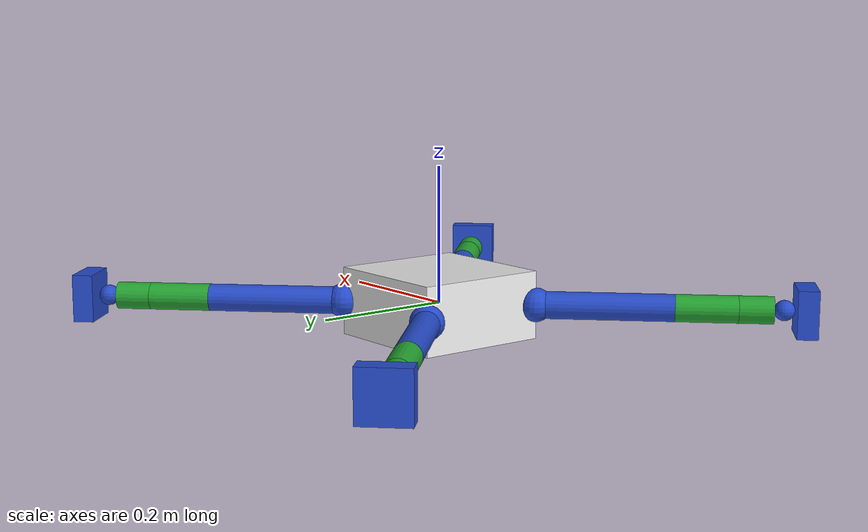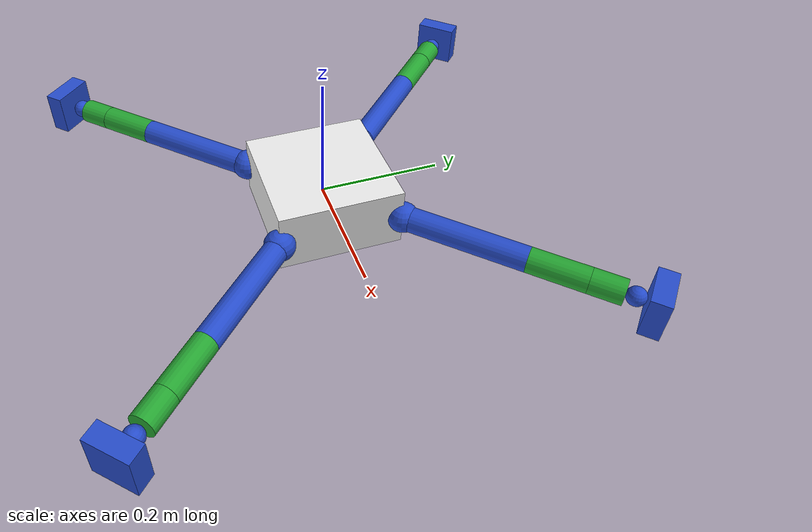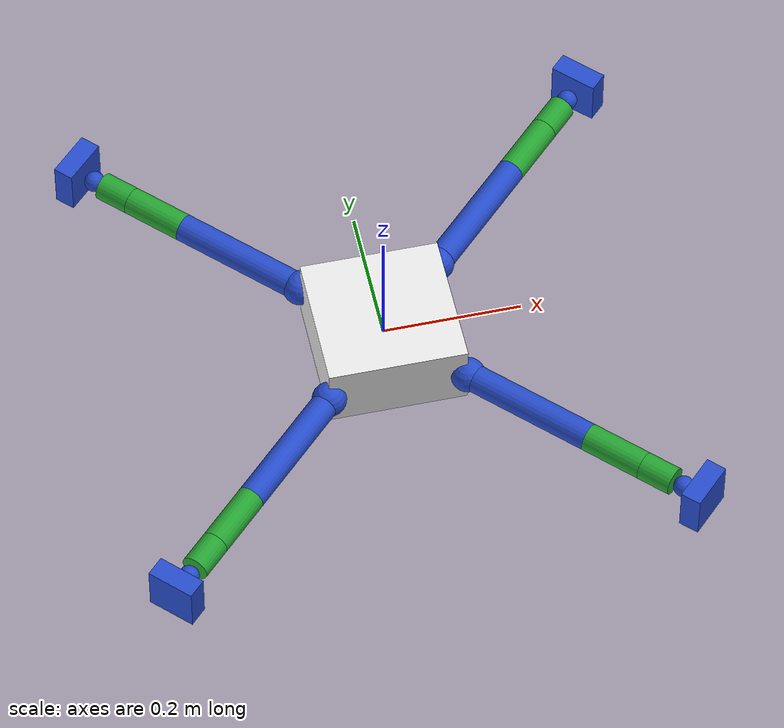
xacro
<?xml version="1.0"?>
<robot xmlns:xacro="http://www.ros.org/wiki/xacro"  name="robot">

    <xacro:arg name="use_gazebo" default="false" />

    <xacro:arg name="use_fake_hardware" default="false" />
    <xacro:arg name="fake_sensor_commands" default="false" />
    <xacro:arg name="prefix" default="" />
    <xacro:arg name="slowdown" default="100.0" />

    <!-- Import core-description -->
    <xacro:include filename="robot_core.xacro" />

    <!-- Import all Gazebo-customization elements, including Gazebo colors -->
    <xacro:include filename="magnorris.gazebo.xacro" />

    <!-- Import Rviz colors -->
    <xacro:include filename="magnorris.materials.xacro" />

    <!-- Import RRBot ros2_control description -->
    <xacro:include filename="robot.ros2_control.xacro" />

    <xacro:magnorris_ros2_control use_gazebo="false"/>

</robot>

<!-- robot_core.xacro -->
<robot xmlns:xacro="http://www.ros.org/wiki/xacro" >

    <xacro:include filename="inertial_macros.xacro"/>

    <!--dimensions-->
    <xacro:property name="length_body" value="0.20" />
    <xacro:property name="width_body" value="0.20" />
    <xacro:property name="height_body" value="0.10" />
    <xacro:property name="length_upper_leg" value="0.20" />
    <xacro:property name="length_lower_leg" value="0.09" />
    <xacro:property name="length_foot_yaw" value="0.05" />
    <xacro:property name="radius_upper_leg" value="0.02" />
    <xacro:property name="radius_lower_leg" value="0.02" />
    <xacro:property name="radius_joint" value="0.025" />
    <xacro:property name="radius_foot_joint" value="0.015" />
    <xacro:property name="foot_thickness" value="0.03" />
    <xacro:property name="foot_length" value="0.07" />
    <xacro:property name="foot_width" value="0.07" />
    <!--mass-->
    <xacro:property name="mass_body" value="0.70" />
    <xacro:property name="mass_upper_leg" value="0.40" />
    <xacro:property name="mass_lower_leg" value="0.4" />
    <xacro:property name="mass_hip_joint" value="0.5" />
    <xacro:property name="mass_foot_yaw" value="0.2" />
    <xacro:property name="mass_foot_roll" value="0.2" />
    <xacro:property name="mass_foot" value="1.0" />
    <!--joint properties-->
    <xacro:property name="joint_effort" value="200.0" />
    <xacro:property name="joint_velocity" value="1.0" />
    <xacro:property name="joint_damping" value="0.8" />
    <xacro:property name="joint_friction" value="0.0" />

    <!-- BASE LINK -->

    <!-- CHASSIS LINK -->

    <link name="chassis">
        <visual>
            <origin xyz="0 0 0"/>
            <geometry>
                <box size="${length_body} ${width_body} ${height_body}"/>
            </geometry>
            <material name="white"/>
        </visual>

        <collision>
            <origin xyz="0 0 0"/>
            <geometry>
                <box size="${length_body*0.95 - 2*radius_joint} ${width_body*0.95 - 2*radius_joint} ${height_body}"/>
            </geometry>
            <surface>
      <contact>
          <ode>
            <kp>1e15</kp>
            <kd>1e13</kd>
          </ode>
        </contact>
    </surface>
        </collision>

        <xacro:inertial_box mass="${mass_body}" x="${length_body}" y="${width_body}" z="${height_body}">
            <origin xyz="0 0 0" rpy="0 0 0"/>
        </xacro:inertial_box>
    </link>

    <!-- First Arm -->

    <joint name="first_arm_yaw" type="revolute">
        <parent link="chassis"/>
        <child link="first_arm_link"/>
        <origin xyz="${length_body/2} ${width_body/2} 0" rpy="0 0 ${pi/4}" />
        <axis xyz="0 0 1"/>
        <dynamics damping="${1*joint_damping}" friction="${joint_friction}"/>
        <limit effort="${joint_effort}" velocity="${joint_velocity}" lower="-3.1" upper="3.1"/>
    </joint>

    <link name="first_arm_link">
        <visual>
            <origin xyz="0.0 0.0 0.0" rpy="0 0 0" />
            <geometry>
                <sphere radius="${radius_joint}" />
            </geometry>
            <material name="blue"/>
        </visual>
        <collision>
            <origin xyz="0.0 0.0 0.0" rpy="0 0 0" />
            <geometry>
                <sphere radius="${radius_joint}" />
            </geometry>
        </collision>

        <xacro:inertial_sphere mass="${mass_hip_joint}" radius="${radius_joint}">
            <origin xyz="0.0 0.0 0.0" rpy="0 0 0"/>
        </xacro:inertial_sphere>
    </link>

    <joint name="first_arm_pitch" type="revolute">
        <parent link="first_arm_link"/>
        <child link="first_arm"/>
        <origin xyz="0.0 0.0 0.0" rpy="0 0 0" />
        <axis xyz="0 1 0"/>
        <dynamics damping="${1*joint_damping}" friction="${joint_friction}"/>
        <limit effort="${joint_effort}" velocity="${joint_velocity}" lower="-3.1" upper="3.1"/>
    </joint>

    <link name="first_arm">
        <visual>
            <origin xyz="${length_upper_leg/2} 0 0" rpy="${-pi/2} 0 ${pi/2}" />
            <geometry>
                <cylinder radius="${radius_upper_leg}" length="${length_upper_leg}"/>
            </geometry>
            <material name="blue"/>
        </visual>

        <collision>
            <origin xyz="${length_upper_leg/2} 0 0" rpy="${-pi/2} 0 ${pi/2}" />
            <geometry>
                <cylinder radius="${radius_upper_leg}" length="${length_upper_leg - 2.2*radius_joint}"/>
            </geometry>
        </collision>

        <xacro:inertial_cylinder mass="${mass_upper_leg}" length="${length_upper_leg}" radius="${radius_upper_leg}">
            <origin xyz="${length_upper_leg/2} 0 0" rpy="${-pi/2} 0 ${pi/2}" />
        </xacro:inertial_cylinder>
    </link>

    <joint name="first_knee_joint" type="revolute">
        <parent link="first_arm"/>
        <child link="first_knee"/>
        <origin xyz="${length_upper_leg} 0.0 0.0" rpy="0 0 0" />
        <axis xyz="0 1 0"/>
        <dynamics damping="${1*joint_damping}" friction="${joint_friction}"/>
        <limit effort="${joint_effort}" velocity="${joint_velocity}" lower="-3.1" upper="3.1"/>
    </joint>

    <link name="first_knee">
        <visual>
            <origin xyz="${length_lower_leg/2} 0 0" rpy="${-pi/2} 0 ${pi/2}" />
            <geometry>
                <cylinder radius="${radius_lower_leg}" length="${length_lower_leg}"/>
            </geometry>
            <material name="green"/>
        </visual>

        <collision>
            <origin xyz="${length_lower_leg/2} 0 0" rpy="${-pi/2} 0 ${pi/2}" />
            <geometry>
                <cylinder radius="${radius_lower_leg}" length="${length_lower_leg}"/>
            </geometry>
            <material name="green"/>
        </collision>

        <xacro:inertial_cylinder mass="${mass_lower_leg}" length="${length_lower_leg}" radius="${radius_lower_leg}">
            <origin xyz="${length_lower_leg/2} 0 0" rpy="${-pi/2} 0 ${pi/2}" />
        </xacro:inertial_cylinder>
    </link>

   <joint name="first_ankle_yaw_joint" type="revolute">
        <parent link="first_knee"/>
        <child link="first_ankle_yaw"/>
        <origin xyz="${length_lower_leg} 0.0 0.0" rpy="0 0 0" />
        <axis xyz="1 0 0"/>
        <dynamics damping="${1*joint_damping}" friction="${joint_friction}"/>
        <limit effort="${joint_effort}" velocity="${joint_velocity}" lower="-3.1" upper="3.1"/>
    </joint>

    <link name="first_ankle_yaw">
        <visual>
            <origin xyz="${length_foot_yaw/2} 0 0" rpy="${-pi/2} 0 ${pi/2}" />
            <geometry>
                <cylinder radius="${radius_lower_leg}" length="${length_foot_yaw}"/>
            </geometry>
            <material name="green"/>
        </visual>

        <collision>
            <origin xyz="${0.05/2} 0 0" rpy="${-pi/2} 0 ${pi/2}" />
            <geometry>
                <cylinder radius="${radius_lower_leg}" length="${length_foot_yaw}"/>
            </geometry>
            <material name="green"/>
        </collision>

        <xacro:inertial_cylinder mass="${mass_foot_yaw}" length="${length_foot_yaw}" radius="${radius_lower_leg}">
            <origin xyz="${length_foot_yaw/2} 0 0" rpy="${-pi/2} 0 ${pi/2}" />
        </xacro:inertial_cylinder>
    </link>

    <joint name="first_ankle_roll_joint" type="revolute">
        <parent link="first_ankle_yaw"/>
        <child link="first_ankle_roll"/>
        <origin xyz="${length_foot_yaw + radius_foot_joint} 0 0" rpy="0 0 0" />
        <axis xyz="0 0 1"/>
        <dynamics damping="${1*joint_damping}" friction="${joint_friction}"/>
        <limit effort="${joint_effort}" velocity="${joint_velocity}" lower="-3.1" upper="3.1"/>
    </joint>

    <link name="first_ankle_roll">
        <visual>
            <origin xyz="0.0 0.0 0.0" rpy="0 0 0" />
            <geometry>
                <sphere radius="${radius_foot_joint}" />
            </geometry>
            <material name="blue"/>
        </visual>
        <collision>
            <origin xyz="0.0 0.0 0.0" rpy="0 0 0" />
            <geometry>
                <sphere radius="${0.9 * radius_foot_joint}" />
            </geometry>
        </collision>

        <xacro:inertial_sphere mass="${mass_foot_roll}" radius="${radius_foot_joint}">
            <origin xyz="0.0 0.0 0.0" rpy="0 0 0"/>
        </xacro:inertial_sphere>
    </link>

    <joint name="first_ankle_pitch_joint" type="revolute">
        <parent link="first_ankle_roll"/>
        <child link="first_foot"/>
        <origin xyz="0 0 0" rpy="0 0 0" />
        <axis xyz="0 1 0"/>
        <dynamics damping="${1*joint_damping}" friction="${joint_friction}"/>
        <limit effort="${joint_effort}" velocity="${joint_velocity}" lower="-3.1" upper="3.1"/>
    </joint>

    <link name="first_foot">
        <visual>
            <origin xyz="${radius_foot_joint + 0.5 * foot_thickness} 0.0 0.0" rpy="0 0 0" />
            <geometry>
                <box size="${foot_thickness} ${foot_width} ${foot_length}"/>
            </geometry>
            <material name="blue"/>
        </visual>
        <collision>
            <origin xyz="${radius_foot_joint + 0.5 * foot_thickness} 0.0 0.0" rpy="0 0 0" />
            <geometry>
                <box size="${foot_thickness} ${foot_width} ${foot_length}"/>
            </geometry>
        </collision>

         <xacro:inertial_box mass="${mass_foot}" x="${foot_thickness}" y="${foot_width}" z="${foot_length}">
            <origin xyz="${radius_foot_joint + 0.5 * foot_thickness} 0.0 0.0" rpy="0 0 0" />
        </xacro:inertial_box>
    </link>

    <!-- Second Arm -->

    <joint name="second_arm_yaw" type="revolute">
        <parent link="chassis"/>
        <child link="second_arm_link"/>
        <origin xyz="${length_body/2} ${-width_body/2} 0" rpy="0 0 ${-pi/4}" />
        <axis xyz="0 0 1"/>
        <dynamics damping="${1*joint_damping}" friction="${joint_friction}"/>
        <limit effort="${joint_effort}" velocity="${joint_velocity}" lower="-3.1" upper="3.1"/>
    </joint>

    <link name="second_arm_link">
        <visual>
            <origin xyz="0.0 0.0 0.0" rpy="0 0 0" />
            <geometry>
                <sphere radius="${radius_joint}" />
            </geometry>
            <material name="blue"/>
        </visual>
        <collision>
            <origin xyz="0.0 0.0 0.0" rpy="0 0 0" />
            <geometry>
                <sphere radius="${radius_joint}" />
            </geometry>
        </collision>

        <xacro:inertial_sphere mass="${mass_hip_joint}" radius="${radius_joint}">
            <origin xyz="0.0 0.0 0.0" rpy="0 0 0"/>
        </xacro:inertial_sphere>
    </link>

    <joint name="second_arm_pitch" type="revolute">
        <parent link="second_arm_link"/>
        <child link="second_arm"/>
        <origin xyz="0.0 0.0 0.0" rpy="0 0 0" />
        <axis xyz="0 1 0"/>
        <dynamics damping="${1*joint_damping}" friction="${joint_friction}"/>
        <limit effort="${joint_effort}" velocity="${joint_velocity}" lower="-3.1" upper="3.1"/>
    </joint>

    <link name="second_arm">
        <visual>
            <origin xyz="${length_upper_leg/2} 0 0" rpy="${-pi/2} 0 ${pi/2}" />
            <geometry>
                <cylinder radius="${radius_upper_leg}" length="${length_upper_leg}"/>
            </geometry>
            <material name="blue"/>
        </visual>

        <collision>
            <origin xyz="${length_upper_leg/2} 0 0" rpy="${-pi/2} 0 ${pi/2}" />
            <geometry>
                <cylinder radius="${radius_upper_leg}" length="${length_upper_leg - 2.2*radius_joint}"/>
            </geometry>
        </collision>

        <xacro:inertial_cylinder mass="${mass_upper_leg}" length="${length_upper_leg}" radius="${radius_upper_leg}">
            <origin xyz="${length_upper_leg/2} 0 0" rpy="${-pi/2} 0 ${pi/2}" />
        </xacro:inertial_cylinder>
    </link>

    <joint name="second_knee_joint" type="revolute">
        <parent link="second_arm"/>
        <child link="second_knee"/>
        <origin xyz="${length_upper_leg} 0.0 0.0" rpy="0 0 0" />
        <axis xyz="0 1 0"/>
        <dynamics damping="${1*joint_damping}" friction="${joint_friction}"/>
        <limit effort="${joint_effort}" velocity="${joint_velocity}" lower="-3.1" upper="3.1"/>
    </joint>

    <link name="second_knee">
        <visual>
            <origin xyz="${length_lower_leg/2} 0 0" rpy="${-pi/2} 0 ${pi/2}" />
            <geometry>
                <cylinder radius="${radius_lower_leg}" length="${length_lower_leg}"/>
            </geometry>
            <material name="green"/>
        </visual>

        <collision>
            <origin xyz="${length_lower_leg/2} 0 0" rpy="${-pi/2} 0 ${pi/2}" />
            <geometry>
                <cylinder radius="${radius_lower_leg}" length="${length_lower_leg}"/>
            </geometry>
            <material name="green"/>
        </collision>

        <xacro:inertial_cylinder mass="${mass_lower_leg}" length="${length_lower_leg}" radius="${radius_lower_leg}">
            <origin xyz="${length_lower_leg/2} 0 0" rpy="${-pi/2} 0 ${pi/2}" />
        </xacro:inertial_cylinder>
    </link>

    <joint name="second_ankle_yaw_joint" type="revolute">
        <parent link="second_knee"/>
        <child link="second_ankle_yaw"/>
        <origin xyz="${length_lower_leg} 0.0 0.0" rpy="0 0 0" />
        <axis xyz="1 0 0"/>
        <dynamics damping="${1*joint_damping}" friction="${joint_friction}"/>
        <limit effort="${joint_effort}" velocity="${joint_velocity}" lower="-3.1" upper="3.1"/>
    </joint>

    <link name="second_ankle_yaw">
        <visual>
            <origin xyz="${length_foot_yaw/2} 0 0" rpy="${-pi/2} 0 ${pi/2}" />
            <geometry>
                <cylinder radius="${radius_lower_leg}" length="${length_foot_yaw}"/>
            </geometry>
            <material name="green"/>
        </visual>

        <collision>
            <origin xyz="${0.05/2} 0 0" rpy="${-pi/2} 0 ${pi/2}" />
            <geometry>
                <cylinder radius="${radius_lower_leg}" length="${length_foot_yaw}"/>
            </geometry>
            <material name="green"/>
        </collision>

        <xacro:inertial_cylinder mass="${mass_foot_yaw}" length="${length_foot_yaw}" radius="${radius_lower_leg}">
            <origin xyz="${length_foot_yaw/2} 0 0" rpy="${-pi/2} 0 ${pi/2}" />
        </xacro:inertial_cylinder>
    </link>

    <joint name="second_ankle_roll_joint" type="revolute">
        <parent link="second_ankle_yaw"/>
        <child link="second_ankle_roll"/>
        <origin xyz="${length_foot_yaw + radius_foot_joint} 0 0" rpy="0 0 0" />
        <axis xyz="0 0 1"/>
        <dynamics damping="${1*joint_damping}" friction="${joint_friction}"/>
        <limit effort="${joint_effort}" velocity="${joint_velocity}" lower="-3.1" upper="3.1"/>
    </joint>

    <link name="second_ankle_roll">
        <visual>
            <origin xyz="0.0 0.0 0.0" rpy="0 0 0" />
            <geometry>
                <sphere radius="${radius_foot_joint}" />
            </geometry>
            <material name="blue"/>
        </visual>
        <collision>
            <origin xyz="0.0 0.0 0.0" rpy="0 0 0" />
            <geometry>
                <sphere radius="${0.9 * radius_foot_joint}" />
            </geometry>
        </collision>

        <xacro:inertial_sphere mass="${mass_foot_roll}" radius="${radius_foot_joint}">
            <origin xyz="0.0 0.0 0.0" rpy="0 0 0"/>
        </xacro:inertial_sphere>
    </link>

    <joint name="second_ankle_pitch_joint" type="revolute">
        <parent link="second_ankle_roll"/>
        <child link="second_foot"/>
        <origin xyz="0 0 0" rpy="0 0 0" />
        <axis xyz="0 1 0"/>
        <dynamics damping="${1*joint_damping}" friction="${joint_friction}"/>
        <limit effort="${joint_effort}" velocity="${joint_velocity}" lower="-3.1" upper="3.1"/>
    </joint>

    <link name="second_foot">
        <visual>
            <origin xyz="${radius_foot_joint + 0.5 * foot_thickness} 0.0 0.0" rpy="0 0 0" />
            <geometry>
                <box size="${foot_thickness} ${foot_width} ${foot_length}"/>
            </geometry>
            <material name="blue"/>
        </visual>
        <collision>
            <origin xyz="${radius_foot_joint + 0.5 * foot_thickness} 0.0 0.0" rpy="0 0 0" />
            <geometry>
                <box size="${foot_thickness} ${foot_width} ${foot_length}"/>
            </geometry>
        </collision>

         <xacro:inertial_box mass="${mass_foot}" x="${foot_thickness}" y="${foot_width}" z="${foot_length}">
            <origin xyz="${radius_foot_joint + 0.5 * foot_thickness} 0.0 0.0" rpy="0 0 0" />
        </xacro:inertial_box>
    </link>

       <!-- third Arm -->

    <joint name="third_arm_yaw" type="revolute">
        <parent link="chassis"/>
        <child link="third_arm_link"/>
        <origin xyz="${-length_body/2} ${-width_body/2} 0" rpy="0 0 ${-3*pi/4}" />
        <axis xyz="0 0 1"/>
        <dynamics damping="${1*joint_damping}" friction="${joint_friction}"/>
        <limit effort="${joint_effort}" velocity="${joint_velocity}" lower="-3.1" upper="3.1"/>
    </joint>

    <link name="third_arm_link">
        <visual>
            <origin xyz="0.0 0.0 0.0" rpy="0 0 0" />
            <geometry>
                <sphere radius="${radius_joint}" />
            </geometry>
            <material name="blue"/>
        </visual>
        <collision>
            <origin xyz="0.0 0.0 0.0" rpy="0 0 0" />
            <geometry>
                <sphere radius="${radius_joint}" />
            </geometry>
        </collision>

        <xacro:inertial_sphere mass="${mass_hip_joint}" radius="${radius_joint}">
            <origin xyz="0.0 0.0 0.0" rpy="0 0 0"/>
        </xacro:inertial_sphere>
    </link>

    <joint name="third_arm_pitch" type="revolute">
        <parent link="third_arm_link"/>
        <child link="third_arm"/>
        <origin xyz="0.0 0.0 0.0" rpy="0 0 0" />
        <axis xyz="0 1 0"/>
        <dynamics damping="${1*joint_damping}" friction="${joint_friction}"/>
        <limit effort="${joint_effort}" velocity="${joint_velocity}" lower="-3.1" upper="3.1"/>
    </joint>

    <link name="third_arm">
        <visual>
            <origin xyz="${length_upper_leg/2} 0 0" rpy="${-pi/2} 0 ${pi/2}" />
            <geometry>
                <cylinder radius="${radius_upper_leg}" length="${length_upper_leg}"/>
            </geometry>
            <material name="blue"/>
        </visual>

        <collision>
            <origin xyz="${length_upper_leg/2} 0 0" rpy="${-pi/2} 0 ${pi/2}" />
            <geometry>
                <cylinder radius="${radius_upper_leg}" length="${length_upper_leg - 2.2*radius_joint}"/>
            </geometry>
        </collision>

        <xacro:inertial_cylinder mass="${mass_upper_leg}" length="${length_upper_leg}" radius="${radius_upper_leg}">
            <origin xyz="${length_upper_leg/2} 0 0" rpy="${-pi/2} 0 ${pi/2}" />
        </xacro:inertial_cylinder>
    </link>

    <joint name="third_knee_joint" type="revolute">
        <parent link="third_arm"/>
        <child link="third_knee"/>
        <origin xyz="${length_upper_leg} 0.0 0.0" rpy="0 0 0" />
        <axis xyz="0 1 0"/>
        <dynamics damping="${1*joint_damping}" friction="${joint_friction}"/>
        <limit effort="${joint_effort}" velocity="${joint_velocity}" lower="-3.1" upper="3.1"/>
    </joint>

    <link name="third_knee">
        <visual>
            <origin xyz="${length_lower_leg/2} 0 0" rpy="${-pi/2} 0 ${pi/2}" />
            <geometry>
                <cylinder radius="${radius_lower_leg}" length="${length_lower_leg}"/>
            </geometry>
            <material name="green"/>
        </visual>

        <collision>
            <origin xyz="${length_lower_leg/2} 0 0" rpy="${-pi/2} 0 ${pi/2}" />
            <geometry>
                <cylinder radius="${radius_lower_leg}" length="${length_lower_leg}"/>
            </geometry>
            <material name="green"/>
        </collision>

        <xacro:inertial_cylinder mass="${mass_lower_leg}" length="${length_lower_leg}" radius="${radius_lower_leg}">
            <origin xyz="${length_lower_leg/2} 0 0" rpy="${-pi/2} 0 ${pi/2}" />
        </xacro:inertial_cylinder>
    </link>

    <joint name="third_ankle_yaw_joint" type="revolute">
        <parent link="third_knee"/>
        <child link="third_ankle_yaw"/>
        <origin xyz="${length_lower_leg} 0.0 0.0" rpy="0 0 0" />
        <axis xyz="1 0 0"/>
        <dynamics damping="${1*joint_damping}" friction="${joint_friction}"/>
        <limit effort="${joint_effort}" velocity="${joint_velocity}" lower="-3.1" upper="3.1"/>
    </joint>

    <link name="third_ankle_yaw">
        <visual>
            <origin xyz="${length_foot_yaw/2} 0 0" rpy="${-pi/2} 0 ${pi/2}" />
            <geometry>
                <cylinder radius="${radius_lower_leg}" length="${length_foot_yaw}"/>
            </geometry>
            <material name="green"/>
        </visual>

        <collision>
            <origin xyz="${0.05/2} 0 0" rpy="${-pi/2} 0 ${pi/2}" />
            <geometry>
                <cylinder radius="${radius_lower_leg}" length="${length_foot_yaw}"/>
            </geometry>
            <material name="green"/>
        </collision>

        <xacro:inertial_cylinder mass="${mass_foot_yaw}" length="${length_foot_yaw}" radius="${radius_lower_leg}">
            <origin xyz="${length_foot_yaw/2} 0 0" rpy="${-pi/2} 0 ${pi/2}" />
        </xacro:inertial_cylinder>
    </link>

    <joint name="third_ankle_roll_joint" type="revolute">
        <parent link="third_ankle_yaw"/>
        <child link="third_ankle_roll"/>
        <origin xyz="${length_foot_yaw + radius_foot_joint} 0 0" rpy="0 0 0" />
        <axis xyz="0 0 1"/>
        <dynamics damping="${1*joint_damping}" friction="${joint_friction}"/>
        <limit effort="${joint_effort}" velocity="${joint_velocity}" lower="-3.1" upper="3.1"/>
    </joint>

    <link name="third_ankle_roll">
        <visual>
            <origin xyz="0.0 0.0 0.0" rpy="0 0 0" />
            <geometry>
                <sphere radius="${radius_foot_joint}" />
            </geometry>
            <material name="blue"/>
        </visual>
        <collision>
            <origin xyz="0.0 0.0 0.0" rpy="0 0 0" />
            <geometry>
                <sphere radius="${0.9 * radius_foot_joint}" />
            </geometry>
        </collision>

        <xacro:inertial_sphere mass="${mass_foot_roll}" radius="${radius_foot_joint}">
            <origin xyz="0.0 0.0 0.0" rpy="0 0 0"/>
        </xacro:inertial_sphere>
    </link>

    <joint name="third_ankle_pitch_joint" type="revolute">
        <parent link="third_ankle_roll"/>
        <child link="third_foot"/>
        <origin xyz="0 0 0" rpy="0 0 0" />
        <axis xyz="0 1 0"/>
        <dynamics damping="${1*joint_damping}" friction="${joint_friction}"/>
        <limit effort="${joint_effort}" velocity="${joint_velocity}" lower="-3.1" upper="3.1"/>
    </joint>

    <link name="third_foot">
        <visual>
            <origin xyz="${radius_foot_joint + 0.5 * foot_thickness} 0.0 0.0" rpy="0 0 0" />
            <geometry>
                <box size="${foot_thickness} ${foot_width} ${foot_length}"/>
            </geometry>
            <material name="blue"/>
        </visual>
        <collision>
            <origin xyz="${radius_foot_joint + 0.5 * foot_thickness} 0.0 0.0" rpy="0 0 0" />
            <geometry>
                <box size="${foot_thickness} ${foot_width} ${foot_length}"/>
            </geometry>
        </collision>

         <xacro:inertial_box mass="${mass_foot}" x="${foot_thickness}" y="${foot_width}" z="${foot_length}">
            <origin xyz="${radius_foot_joint + 0.5 * foot_thickness} 0.0 0.0" rpy="0 0 0" />
        </xacro:inertial_box>
    </link>

           <!-- fourth Arm -->

    <joint name="fourth_arm_yaw" type="revolute">
        <parent link="chassis"/>
        <child link="fourth_arm_link"/>
        <origin xyz="${-length_body/2} ${width_body/2} 0" rpy="0 0 ${3*pi/4}" />
        <axis xyz="0 0 1"/>
        <dynamics damping="${1*joint_damping}" friction="${joint_friction}"/>
        <limit effort="${joint_effort}" velocity="${joint_velocity}" lower="-3.1" upper="3.1"/>
    </joint>

    <link name="fourth_arm_link">
        <visual>
            <origin xyz="0.0 0.0 0.0" rpy="0 0 0" />
            <geometry>
                <sphere radius="${radius_joint}" />
            </geometry>
            <material name="blue"/>
        </visual>
        <collision>
            <origin xyz="0.0 0.0 0.0" rpy="0 0 0" />
            <geometry>
                <sphere radius="${radius_joint}" />
            </geometry>
        </collision>

        <xacro:inertial_sphere mass="${mass_hip_joint}" radius="${radius_joint}">
            <origin xyz="0.0 0.0 0.0" rpy="0 0 0"/>
        </xacro:inertial_sphere>
    </link>

    <joint name="fourth_arm_pitch" type="revolute">
        <parent link="fourth_arm_link"/>
        <child link="fourth_arm"/>
        <origin xyz="0.0 0.0 0.0" rpy="0 0 0" />
        <axis xyz="0 1 0"/>
        <dynamics damping="${1*joint_damping}" friction="${joint_friction}"/>
        <limit effort="${joint_effort}" velocity="${joint_velocity}" lower="-3.1" upper="3.1"/>
    </joint>

    <link name="fourth_arm">
        <visual>
            <origin xyz="${length_upper_leg/2} 0 0" rpy="${-pi/2} 0 ${pi/2}" />
            <geometry>
                <cylinder radius="${radius_upper_leg}" length="${length_upper_leg}"/>
            </geometry>
            <material name="blue"/>
        </visual>

        <collision>
            <origin xyz="${length_upper_leg/2} 0 0" rpy="${-pi/2} 0 ${pi/2}" />
            <geometry>
                <cylinder radius="${radius_upper_leg}" length="${length_upper_leg - 2.2*radius_joint}"/>
            </geometry>
        </collision>

        <xacro:inertial_cylinder mass="${mass_upper_leg}" length="${length_upper_leg}" radius="${radius_upper_leg}">
            <origin xyz="${length_upper_leg/2} 0 0" rpy="${-pi/2} 0 ${pi/2}" />
        </xacro:inertial_cylinder>
    </link>

    <joint name="fourth_knee_joint" type="revolute">
        <parent link="fourth_arm"/>
        <child link="fourth_knee"/>
        <origin xyz="${length_upper_leg} 0.0 0.0" rpy="0 0 0" />
        <axis xyz="0 1 0"/>
        <dynamics damping="${1*joint_damping}" friction="${joint_friction}"/>
        <limit effort="${joint_effort}" velocity="${joint_velocity}" lower="-3.1" upper="3.1"/>
    </joint>

    <link name="fourth_knee">
        <visual>
            <origin xyz="${length_lower_leg/2} 0 0" rpy="${-pi/2} 0 ${pi/2}" />
            <geometry>
                <cylinder radius="${radius_lower_leg}" length="${length_lower_leg}"/>
            </geometry>
            <material name="green"/>
        </visual>

        <collision>
            <origin xyz="${length_lower_leg/2} 0 0" rpy="${-pi/2} 0 ${pi/2}" />
            <geometry>
                <cylinder radius="${radius_lower_leg}" length="${length_lower_leg}"/>
            </geometry>
            <material name="green"/>
        </collision>

        <xacro:inertial_cylinder mass="${mass_lower_leg}" length="${length_lower_leg}" radius="${radius_lower_leg}">
            <origin xyz="${length_lower_leg/2} 0 0" rpy="${-pi/2} 0 ${pi/2}" />
        </xacro:inertial_cylinder>
    </link>

    <joint name="fourth_ankle_yaw_joint" type="revolute">
        <parent link="fourth_knee"/>
        <child link="fourth_ankle_yaw"/>
        <origin xyz="${length_lower_leg} 0.0 0.0" rpy="0 0 0" />
        <axis xyz="1 0 0"/>
        <dynamics damping="${1*joint_damping}" friction="${joint_friction}"/>
        <limit effort="${joint_effort}" velocity="${joint_velocity}" lower="-3.1" upper="3.1"/>
    </joint>

    <link name="fourth_ankle_yaw">
        <visual>
            <origin xyz="${length_foot_yaw/2} 0 0" rpy="${-pi/2} 0 ${pi/2}" />
            <geometry>
                <cylinder radius="${radius_lower_leg}" length="${length_foot_yaw}"/>
            </geometry>
            <material name="green"/>
        </visual>

        <collision>
            <origin xyz="${0.05/2} 0 0" rpy="${-pi/2} 0 ${pi/2}" />
            <geometry>
                <cylinder radius="${radius_lower_leg}" length="${length_foot_yaw}"/>
            </geometry>
            <material name="green"/>
        </collision>

        <xacro:inertial_cylinder mass="${mass_foot_yaw}" length="${length_foot_yaw}" radius="${radius_lower_leg}">
            <origin xyz="${length_foot_yaw/2} 0 0" rpy="${-pi/2} 0 ${pi/2}" />
        </xacro:inertial_cylinder>
    </link>

    <joint name="fourth_ankle_roll_joint" type="revolute">
        <parent link="fourth_ankle_yaw"/>
        <child link="fourth_ankle_roll"/>
        <origin xyz="${length_foot_yaw + radius_foot_joint} 0 0" rpy="0 0 0" />
        <axis xyz="0 0 1"/>
        <dynamics damping="${1*joint_damping}" friction="${joint_friction}"/>
        <limit effort="${joint_effort}" velocity="${joint_velocity}" lower="-3.1" upper="3.1"/>
    </joint>

    <link name="fourth_ankle_roll">
        <visual>
            <origin xyz="0.0 0.0 0.0" rpy="0 0 0" />
            <geometry>
                <sphere radius="${radius_foot_joint}" />
            </geometry>
            <material name="blue"/>
        </visual>
        <collision>
            <origin xyz="0.0 0.0 0.0" rpy="0 0 0" />
            <geometry>
                <sphere radius="${0.9 * radius_foot_joint}" />
            </geometry>
        </collision>

        <xacro:inertial_sphere mass="${mass_foot_roll}" radius="${radius_foot_joint}">
            <origin xyz="0.0 0.0 0.0" rpy="0 0 0"/>
        </xacro:inertial_sphere>
    </link>

    <joint name="fourth_ankle_pitch_joint" type="revolute">
        <parent link="fourth_ankle_roll"/>
        <child link="fourth_foot"/>
        <origin xyz="0 0 0" rpy="0 0 0" />
        <axis xyz="0 1 0"/>
        <dynamics damping="${1*joint_damping}" friction="${joint_friction}"/>
        <limit effort="${joint_effort}" velocity="${joint_velocity}" lower="-3.1" upper="3.1"/>
    </joint>

    <link name="fourth_foot">
        <visual>
            <origin xyz="${radius_foot_joint + 0.5 * foot_thickness} 0.0 0.0" rpy="0 0 0" />
            <geometry>
                <box size="${foot_thickness} ${foot_width} ${foot_length}"/>
            </geometry>
            <material name="blue"/>
        </visual>
        <collision>
            <origin xyz="${radius_foot_joint + 0.5 * foot_thickness} 0.0 0.0" rpy="0 0 0" />
            <geometry>
                <box size="${foot_thickness} ${foot_width} ${foot_length}"/>
            </geometry>
        </collision>

         <xacro:inertial_box mass="${mass_foot}" x="${foot_thickness}" y="${foot_width}" z="${foot_length}">
            <origin xyz="${radius_foot_joint + 0.5 * foot_thickness} 0.0 0.0" rpy="0 0 0" />
        </xacro:inertial_box>
    </link>

</robot>
